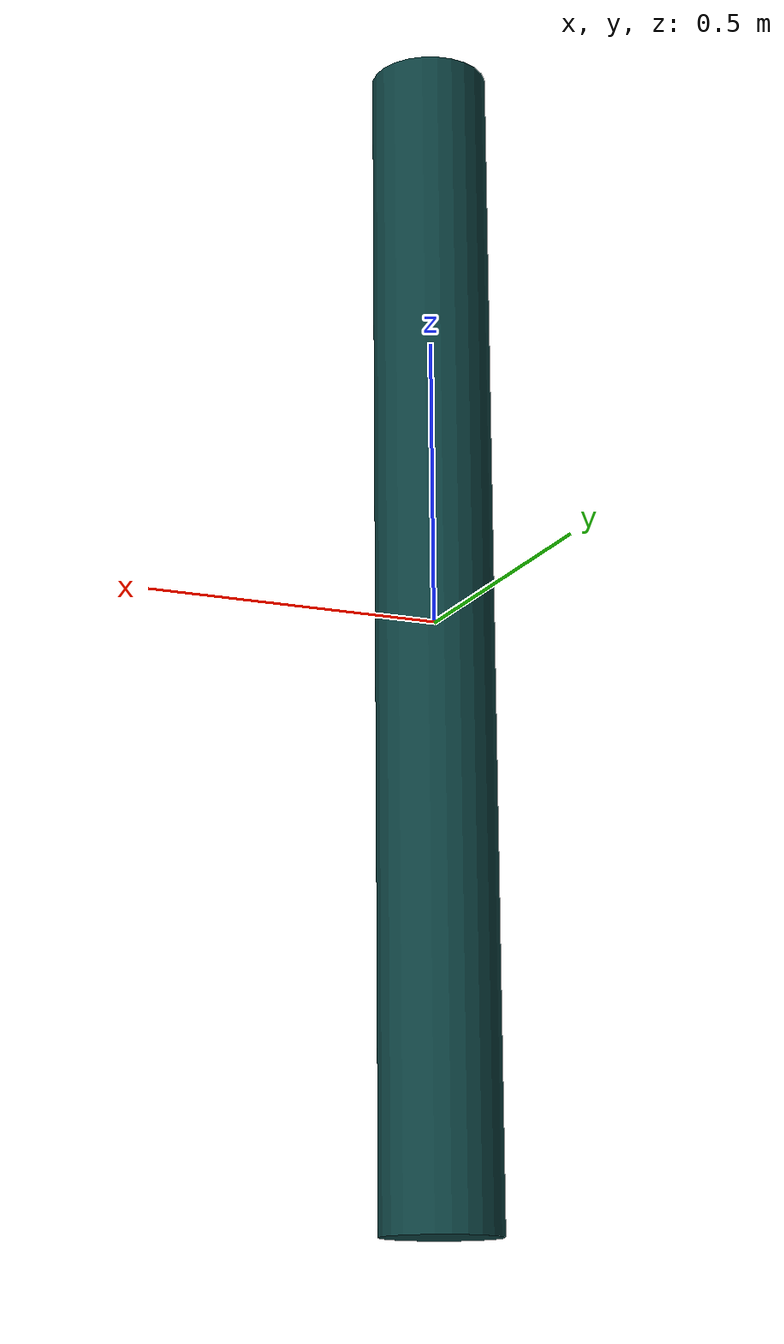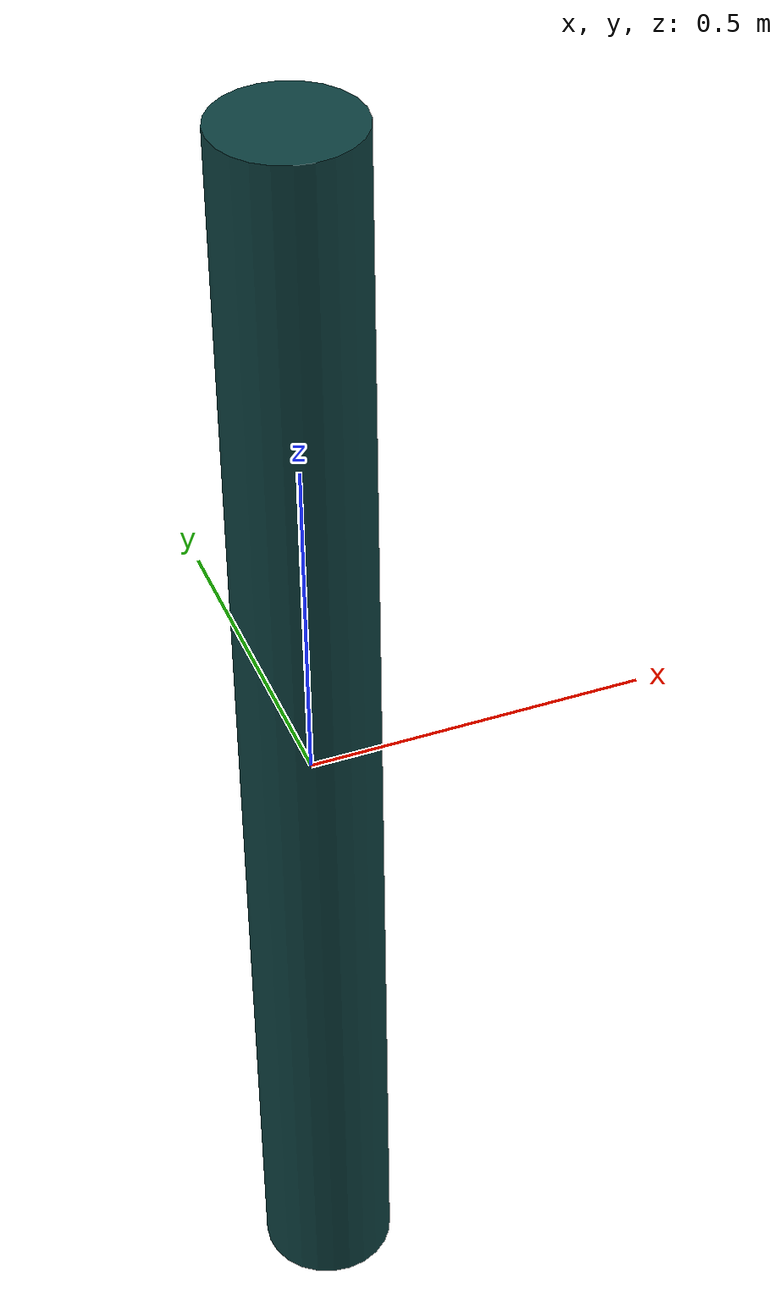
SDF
<?xml version='1.0'?>
<sdf version='1.6'>
  <model name='obstacle'>
    <link name='link'>
      <inertial>
        <mass>112.569</mass>
        <inertia>
          <ixx>33.2512</ixx>
          <ixy>0</ixy>
          <ixz>0</ixz>
          <iyy>33.2512</iyy>
          <iyz>0</iyz>
          <izz>0.537779</izz>
        </inertia>
        <pose frame=''>0 0 0 0 -0 0</pose>
      </inertial>
      <self_collide>0</self_collide>
      <enable_wind>0</enable_wind>
      <kinematic>0</kinematic>
      <pose frame=''>0 0 0 0 -0 0</pose>
      <gravity>1</gravity>
      <visual name='visual'>
        <geometry>
          <cylinder>
            <radius>0.1</radius>
            <length>2</length>
          </cylinder>
        </geometry>
        <material>
          <script>
            <name>Gazebo/Grey</name>
            <uri>file://media/materials/scripts/gazebo.material</uri>
          </script>
          <shader type='pixel'>
            <normal_map>__default__</normal_map>
          </shader>
          <ambient>0.05 0.25 0.25 1</ambient>
          <diffuse>0.3 0.3 0.3 1</diffuse>
          <specular>0.01 0.01 0.01 1</specular>
          <emissive>0.1 0.1 0.1 1</emissive>
          <lighting>1</lighting>
        </material>
        <pose frame=''>0 0 0 0 -0 0</pose>
        <transparency>0</transparency>
        <cast_shadows>1</cast_shadows>
      </visual>
      <collision name='collision'>
        <laser_retro>0</laser_retro>
        <max_contacts>10</max_contacts>
        <pose frame=''>0 0 0 0 -0 0</pose>
        <geometry>
          <cylinder>
            <radius>0.097748</radius>
            <length>1.87509</length>
          </cylinder>
        </geometry>
        <surface>
          <friction>
            <ode>
              <mu>1</mu>
              <mu2>1</mu2>
              <fdir1>0 0 0</fdir1>
              <slip1>0</slip1>
              <slip2>0</slip2>
            </ode>
            <torsional>
              <coefficient>1</coefficient>
              <patch_radius>0</patch_radius>
              <surface_radius>0</surface_radius>
              <use_patch_radius>1</use_patch_radius>
              <ode>
                <slip>0</slip>
              </ode>
            </torsional>
          </friction>
          <bounce>
            <restitution_coefficient>0</restitution_coefficient>
            <threshold>1e+06</threshold>
          </bounce>
          <contact>
            <collide_without_contact>0</collide_without_contact>
            <collide_without_contact_bitmask>1</collide_without_contact_bitmask>
            <collide_bitmask>1</collide_bitmask>
            <ode>
              <soft_cfm>0</soft_cfm>
              <soft_erp>0.2</soft_erp>
              <kp>1e+13</kp>
              <kd>1</kd>
              <max_vel>0.01</max_vel>
              <min_depth>0</min_depth>
            </ode>
            <bullet>
              <split_impulse>1</split_impulse>
              <split_impulse_penetration_threshold>-0.01</split_impulse_penetration_threshold>
              <soft_cfm>0</soft_cfm>
              <soft_erp>0.2</soft_erp>
              <kp>1e+13</kp>
              <kd>1</kd>
            </bullet>
          </contact>
        </surface>
      </collision>
    </link>
    <static>0</static>
    <allow_auto_disable>1</allow_auto_disable>
  </model>
</sdf>
